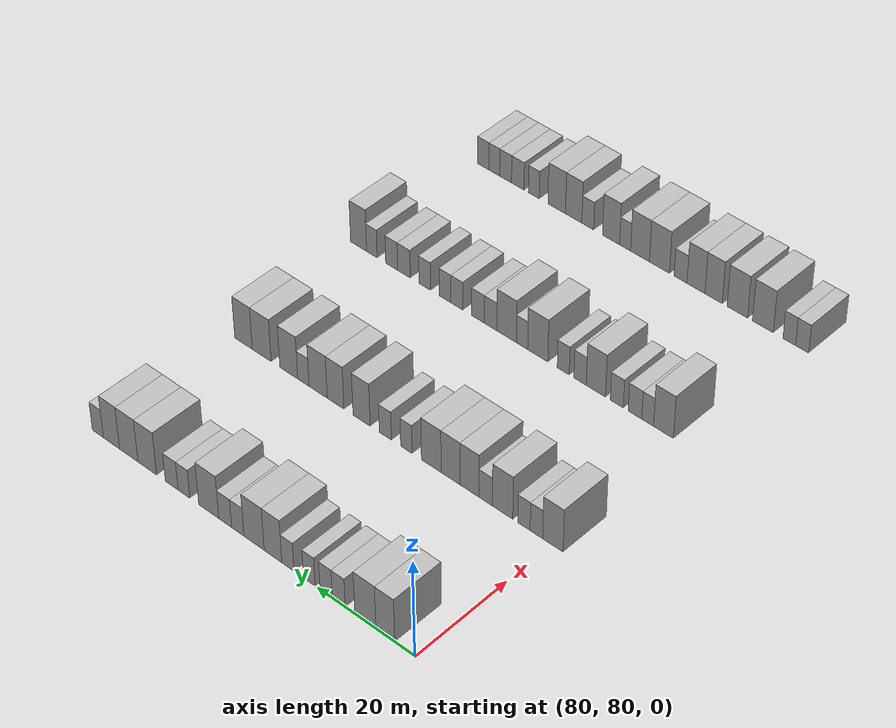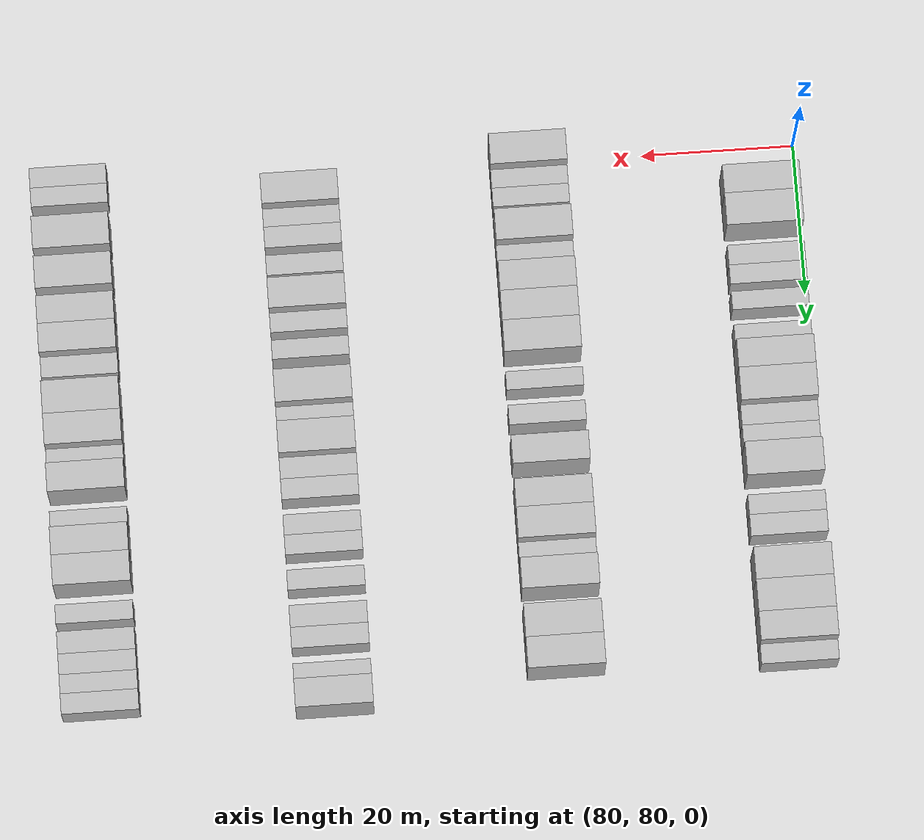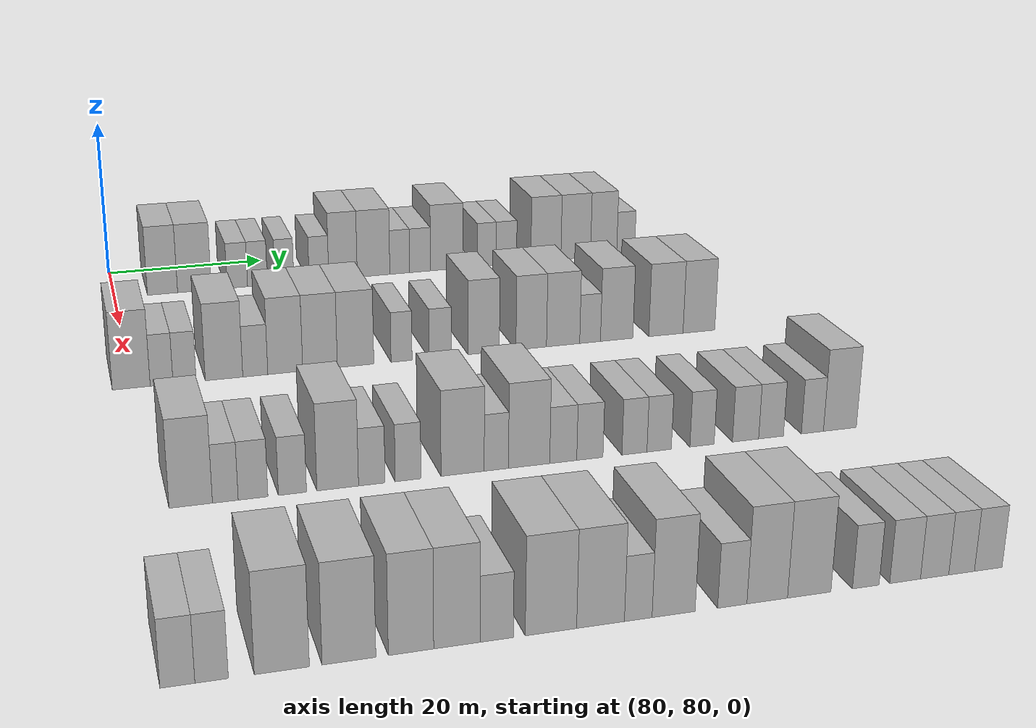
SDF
<sdf version="1.6">
 <world name="default">
  <model name="building_576">
   <static>1</static>
   <pose>85.0000 86.0108 0 0.000000 0.000000 0.000000</pose>
   <link name="link">
    <pose>0 0 4.50 0 0 0</pose>
    <collision name="collision"><geometry><box><size>10.0000 3.7856 9.0000</size></box></geometry></collision>
    <visual name="visual">
     <cast_shadows>0</cast_shadows>
     <geometry><box><size>10.0000 3.7856 9.0000</size></box></geometry>
     <material>
      <script>
       <uri>model://HANNAS_wall/materials/scripts</uri>
       <uri>model://HANNAS_wall/materials/textures</uri>
       <name>vrc/HANNAS_wall</name>
      </script>
     </material>
    </visual>
   </link>
  </model>
  <model name="building_577">
   <static>1</static>
   <pose>85.0000 90.0447 0 0.000000 0.000000 0.000000</pose>
   <link name="link">
    <pose>0 0 4.50 0 0 0</pose>
    <collision name="collision"><geometry><box><size>10.0000 4.2822 9.0000</size></box></geometry></collision>
    <visual name="visual">
     <cast_shadows>0</cast_shadows>
     <geometry><box><size>10.0000 4.2822 9.0000</size></box></geometry>
     <material>
      <script>
       <uri>model://HANNAS_wall/materials/scripts</uri>
       <uri>model://HANNAS_wall/materials/textures</uri>
       <name>vrc/HANNAS_wall</name>
      </script>
     </material>
    </visual>
   </link>
  </model>
  <model name="building_578">
   <static>1</static>
   <pose>85.0000 95.5018 0 0.000000 0.000000 0.000000</pose>
   <link name="link">
    <pose>0 0 3.00 0 0 0</pose>
    <collision name="collision"><geometry><box><size>10.0000 2.6319 6.0000</size></box></geometry></collision>
    <visual name="visual">
     <cast_shadows>0</cast_shadows>
     <geometry><box><size>10.0000 2.6319 6.0000</size></box></geometry>
     <material>
      <script>
       <uri>model://HANNAS_wall/materials/scripts</uri>
       <uri>model://HANNAS_wall/materials/textures</uri>
       <name>vrc/HANNAS_wall</name>
      </script>
     </material>
    </visual>
   </link>
  </model>
  <model name="building_579">
   <static>1</static>
   <pose>85.0000 98.0971 0 0.000000 0.000000 0.000000</pose>
   <link name="link">
    <pose>0 0 3.00 0 0 0</pose>
    <collision name="collision"><geometry><box><size>10.0000 2.5587 6.0000</size></box></geometry></collision>
    <visual name="visual">
     <cast_shadows>0</cast_shadows>
     <geometry><box><size>10.0000 2.5587 6.0000</size></box></geometry>
     <material>
      <script>
       <uri>model://HANNAS_wall/materials/scripts</uri>
       <uri>model://HANNAS_wall/materials/textures</uri>
       <name>vrc/HANNAS_wall</name>
      </script>
     </material>
    </visual>
   </link>
  </model>
  <model name="building_580">
   <static>1</static>
   <pose>85.0000 101.5977 0 0.000000 0.000000 0.000000</pose>
   <link name="link">
    <pose>0 0 3.00 0 0 0</pose>
    <collision name="collision"><geometry><box><size>10.0000 2.4425 6.0000</size></box></geometry></collision>
    <visual name="visual">
     <cast_shadows>0</cast_shadows>
     <geometry><box><size>10.0000 2.4425 6.0000</size></box></geometry>
     <material>
      <script>
       <uri>model://HANNAS_wall/materials/scripts</uri>
       <uri>model://HANNAS_wall/materials/textures</uri>
       <name>vrc/HANNAS_wall</name>
      </script>
     </material>
    </visual>
   </link>
  </model>
  <model name="building_581">
   <static>1</static>
   <pose>85.0000 106.1033 0 0.000000 0.000000 0.000000</pose>
   <link name="link">
    <pose>0 0 3.00 0 0 0</pose>
    <collision name="collision"><geometry><box><size>10.0000 2.5688 6.0000</size></box></geometry></collision>
    <visual name="visual">
     <cast_shadows>0</cast_shadows>
     <geometry><box><size>10.0000 2.5688 6.0000</size></box></geometry>
     <material>
      <script>
       <uri>model://HANNAS_wall/materials/scripts</uri>
       <uri>model://HANNAS_wall/materials/textures</uri>
       <name>vrc/HANNAS_wall</name>
      </script>
     </material>
    </visual>
   </link>
  </model>
  <model name="building_582">
   <static>1</static>
   <pose>85.0000 109.2730 0 0.000000 0.000000 0.000000</pose>
   <link name="link">
    <pose>0 0 4.50 0 0 0</pose>
    <collision name="collision"><geometry><box><size>10.0000 3.7707 9.0000</size></box></geometry></collision>
    <visual name="visual">
     <cast_shadows>0</cast_shadows>
     <geometry><box><size>10.0000 3.7707 9.0000</size></box></geometry>
     <material>
      <script>
       <uri>model://HANNAS_wall/materials/scripts</uri>
       <uri>model://HANNAS_wall/materials/textures</uri>
       <name>vrc/HANNAS_wall</name>
      </script>
     </material>
    </visual>
   </link>
  </model>
  <model name="building_583">
   <static>1</static>
   <pose>85.0000 113.3333 0 0.000000 0.000000 0.000000</pose>
   <link name="link">
    <pose>0 0 4.50 0 0 0</pose>
    <collision name="collision"><geometry><box><size>10.0000 4.3499 9.0000</size></box></geometry></collision>
    <visual name="visual">
     <cast_shadows>0</cast_shadows>
     <geometry><box><size>10.0000 4.3499 9.0000</size></box></geometry>
     <material>
      <script>
       <uri>model://HANNAS_wall/materials/scripts</uri>
       <uri>model://HANNAS_wall/materials/textures</uri>
       <name>vrc/HANNAS_wall</name>
      </script>
     </material>
    </visual>
   </link>
  </model>
  <model name="building_584">
   <static>1</static>
   <pose>85.0000 116.8461 0 0.000000 0.000000 0.000000</pose>
   <link name="link">
    <pose>0 0 3.00 0 0 0</pose>
    <collision name="collision"><geometry><box><size>10.0000 2.6758 6.0000</size></box></geometry></collision>
    <visual name="visual">
     <cast_shadows>0</cast_shadows>
     <geometry><box><size>10.0000 2.6758 6.0000</size></box></geometry>
     <material>
      <script>
       <uri>model://HANNAS_wall/materials/scripts</uri>
       <uri>model://HANNAS_wall/materials/textures</uri>
       <name>vrc/HANNAS_wall</name>
      </script>
     </material>
    </visual>
   </link>
  </model>
  <model name="building_585">
   <static>1</static>
   <pose>85.0000 119.5896 0 0.000000 0.000000 0.000000</pose>
   <link name="link">
    <pose>0 0 3.00 0 0 0</pose>
    <collision name="collision"><geometry><box><size>10.0000 2.8112 6.0000</size></box></geometry></collision>
    <visual name="visual">
     <cast_shadows>0</cast_shadows>
     <geometry><box><size>10.0000 2.8112 6.0000</size></box></geometry>
     <material>
      <script>
       <uri>model://HANNAS_wall/materials/scripts</uri>
       <uri>model://HANNAS_wall/materials/textures</uri>
       <name>vrc/HANNAS_wall</name>
      </script>
     </material>
    </visual>
   </link>
  </model>
  <model name="building_586">
   <static>1</static>
   <pose>85.0000 123.2053 0 0.000000 0.000000 0.000000</pose>
   <link name="link">
    <pose>0 0 4.50 0 0 0</pose>
    <collision name="collision"><geometry><box><size>10.0000 4.4201 9.0000</size></box></geometry></collision>
    <visual name="visual">
     <cast_shadows>0</cast_shadows>
     <geometry><box><size>10.0000 4.4201 9.0000</size></box></geometry>
     <material>
      <script>
       <uri>model://HANNAS_wall/materials/scripts</uri>
       <uri>model://HANNAS_wall/materials/textures</uri>
       <name>vrc/HANNAS_wall</name>
      </script>
     </material>
    </visual>
   </link>
  </model>
  <model name="building_587">
   <static>1</static>
   <pose>85.0000 128.7091 0 0.000000 0.000000 0.000000</pose>
   <link name="link">
    <pose>0 0 3.00 0 0 0</pose>
    <collision name="collision"><geometry><box><size>10.0000 2.5875 6.0000</size></box></geometry></collision>
    <visual name="visual">
     <cast_shadows>0</cast_shadows>
     <geometry><box><size>10.0000 2.5875 6.0000</size></box></geometry>
     <material>
      <script>
       <uri>model://HANNAS_wall/materials/scripts</uri>
       <uri>model://HANNAS_wall/materials/textures</uri>
       <name>vrc/HANNAS_wall</name>
      </script>
     </material>
    </visual>
   </link>
  </model>
  <model name="building_588">
   <static>1</static>
   <pose>85.0000 131.4277 0 0.000000 0.000000 0.000000</pose>
   <link name="link">
    <pose>0 0 3.00 0 0 0</pose>
    <collision name="collision"><geometry><box><size>10.0000 2.8496 6.0000</size></box></geometry></collision>
    <visual name="visual">
     <cast_shadows>0</cast_shadows>
     <geometry><box><size>10.0000 2.8496 6.0000</size></box></geometry>
     <material>
      <script>
       <uri>model://HANNAS_wall/materials/scripts</uri>
       <uri>model://HANNAS_wall/materials/textures</uri>
       <name>vrc/HANNAS_wall</name>
      </script>
     </material>
    </visual>
   </link>
  </model>
  <model name="building_589">
   <static>1</static>
   <pose>85.0000 136.9643 0 0.000000 0.000000 0.000000</pose>
   <link name="link">
    <pose>0 0 4.50 0 0 0</pose>
    <collision name="collision"><geometry><box><size>10.0000 4.2237 9.0000</size></box></geometry></collision>
    <visual name="visual">
     <cast_shadows>0</cast_shadows>
     <geometry><box><size>10.0000 4.2237 9.0000</size></box></geometry>
     <material>
      <script>
       <uri>model://HANNAS_wall/materials/scripts</uri>
       <uri>model://HANNAS_wall/materials/textures</uri>
       <name>vrc/HANNAS_wall</name>
      </script>
     </material>
    </visual>
   </link>
  </model>
  <model name="building_590">
   <static>1</static>
   <pose>85.0000 141.1807 0 0.000000 0.000000 0.000000</pose>
   <link name="link">
    <pose>0 0 4.50 0 0 0</pose>
    <collision name="collision"><geometry><box><size>10.0000 4.2090 9.0000</size></box></geometry></collision>
    <visual name="visual">
     <cast_shadows>0</cast_shadows>
     <geometry><box><size>10.0000 4.2090 9.0000</size></box></geometry>
     <material>
      <script>
       <uri>model://HANNAS_wall/materials/scripts</uri>
       <uri>model://HANNAS_wall/materials/textures</uri>
       <name>vrc/HANNAS_wall</name>
      </script>
     </material>
    </visual>
   </link>
  </model>
  <model name="building_591">
   <static>1</static>
   <pose>85.0000 145.1577 0 0.000000 0.000000 0.000000</pose>
   <link name="link">
    <pose>0 0 4.50 0 0 0</pose>
    <collision name="collision"><geometry><box><size>10.0000 3.7450 9.0000</size></box></geometry></collision>
    <visual name="visual">
     <cast_shadows>0</cast_shadows>
     <geometry><box><size>10.0000 3.7450 9.0000</size></box></geometry>
     <material>
      <script>
       <uri>model://HANNAS_wall/materials/scripts</uri>
       <uri>model://HANNAS_wall/materials/textures</uri>
       <name>vrc/HANNAS_wall</name>
      </script>
     </material>
    </visual>
   </link>
  </model>
  <model name="building_592">
   <static>1</static>
   <pose>85.0000 148.3240 0 0.000000 0.000000 0.000000</pose>
   <link name="link">
    <pose>0 0 3.00 0 0 0</pose>
    <collision name="collision"><geometry><box><size>10.0000 2.5876 6.0000</size></box></geometry></collision>
    <visual name="visual">
     <cast_shadows>0</cast_shadows>
     <geometry><box><size>10.0000 2.5876 6.0000</size></box></geometry>
     <material>
      <script>
       <uri>model://HANNAS_wall/materials/scripts</uri>
       <uri>model://HANNAS_wall/materials/textures</uri>
       <name>vrc/HANNAS_wall</name>
      </script>
     </material>
    </visual>
   </link>
  </model>
  <model name="building_815">
   <static>1</static>
   <pose>115.0000 79.8624 0 0.000000 0.000000 0.000000</pose>
   <link name="link">
    <pose>0 0 4.50 0 0 0</pose>
    <collision name="collision"><geometry><box><size>10.0000 4.0983 9.0000</size></box></geometry></collision>
    <visual name="visual">
     <cast_shadows>0</cast_shadows>
     <geometry><box><size>10.0000 4.0983 9.0000</size></box></geometry>
     <material>
      <script>
       <uri>model://HANNAS_wall/materials/scripts</uri>
       <uri>model://HANNAS_wall/materials/textures</uri>
       <name>vrc/HANNAS_wall</name>
      </script>
     </material>
    </visual>
   </link>
  </model>
  <model name="building_816">
   <static>1</static>
   <pose>115.0000 83.1542 0 0.000000 0.000000 0.000000</pose>
   <link name="link">
    <pose>0 0 3.00 0 0 0</pose>
    <collision name="collision"><geometry><box><size>10.0000 2.4854 6.0000</size></box></geometry></collision>
    <visual name="visual">
     <cast_shadows>0</cast_shadows>
     <geometry><box><size>10.0000 2.4854 6.0000</size></box></geometry>
     <material>
      <script>
       <uri>model://HANNAS_wall/materials/scripts</uri>
       <uri>model://HANNAS_wall/materials/textures</uri>
       <name>vrc/HANNAS_wall</name>
      </script>
     </material>
    </visual>
   </link>
  </model>
  <model name="building_817">
   <static>1</static>
   <pose>115.0000 85.6615 0 0.000000 0.000000 0.000000</pose>
   <link name="link">
    <pose>0 0 3.00 0 0 0</pose>
    <collision name="collision"><geometry><box><size>10.0000 2.5293 6.0000</size></box></geometry></collision>
    <visual name="visual">
     <cast_shadows>0</cast_shadows>
     <geometry><box><size>10.0000 2.5293 6.0000</size></box></geometry>
     <material>
      <script>
       <uri>model://HANNAS_wall/materials/scripts</uri>
       <uri>model://HANNAS_wall/materials/textures</uri>
       <name>vrc/HANNAS_wall</name>
      </script>
     </material>
    </visual>
   </link>
  </model>
  <model name="building_818">
   <static>1</static>
   <pose>115.0000 90.0060 0 0.000000 0.000000 0.000000</pose>
   <link name="link">
    <pose>0 0 4.50 0 0 0</pose>
    <collision name="collision"><geometry><box><size>10.0000 4.1596 9.0000</size></box></geometry></collision>
    <visual name="visual">
     <cast_shadows>0</cast_shadows>
     <geometry><box><size>10.0000 4.1596 9.0000</size></box></geometry>
     <material>
      <script>
       <uri>model://HANNAS_wall/materials/scripts</uri>
       <uri>model://HANNAS_wall/materials/textures</uri>
       <name>vrc/HANNAS_wall</name>
      </script>
     </material>
    </visual>
   </link>
  </model>
  <model name="building_819">
   <static>1</static>
   <pose>115.0000 93.4851 0 0.000000 0.000000 0.000000</pose>
   <link name="link">
    <pose>0 0 3.00 0 0 0</pose>
    <collision name="collision"><geometry><box><size>10.0000 2.7986 6.0000</size></box></geometry></collision>
    <visual name="visual">
     <cast_shadows>0</cast_shadows>
     <geometry><box><size>10.0000 2.7986 6.0000</size></box></geometry>
     <material>
      <script>
       <uri>model://HANNAS_wall/materials/scripts</uri>
       <uri>model://HANNAS_wall/materials/textures</uri>
       <name>vrc/HANNAS_wall</name>
      </script>
     </material>
    </visual>
   </link>
  </model>
  <model name="building_820">
   <static>1</static>
   <pose>115.0000 96.8560 0 0.000000 0.000000 0.000000</pose>
   <link name="link">
    <pose>0 0 4.50 0 0 0</pose>
    <collision name="collision"><geometry><box><size>10.0000 3.9434 9.0000</size></box></geometry></collision>
    <visual name="visual">
     <cast_shadows>0</cast_shadows>
     <geometry><box><size>10.0000 3.9434 9.0000</size></box></geometry>
     <material>
      <script>
       <uri>model://HANNAS_wall/materials/scripts</uri>
       <uri>model://HANNAS_wall/materials/textures</uri>
       <name>vrc/HANNAS_wall</name>
      </script>
     </material>
    </visual>
   </link>
  </model>
  <model name="building_821">
   <static>1</static>
   <pose>115.0000 100.8000 0 0.000000 0.000000 0.000000</pose>
   <link name="link">
    <pose>0 0 4.50 0 0 0</pose>
    <collision name="collision"><geometry><box><size>10.0000 3.9444 9.0000</size></box></geometry></collision>
    <visual name="visual">
     <cast_shadows>0</cast_shadows>
     <geometry><box><size>10.0000 3.9444 9.0000</size></box></geometry>
     <material>
      <script>
       <uri>model://HANNAS_wall/materials/scripts</uri>
       <uri>model://HANNAS_wall/materials/textures</uri>
       <name>vrc/HANNAS_wall</name>
      </script>
     </material>
    </visual>
   </link>
  </model>
  <model name="building_822">
   <static>1</static>
   <pose>115.0000 104.8703 0 0.000000 0.000000 0.000000</pose>
   <link name="link">
    <pose>0 0 4.50 0 0 0</pose>
    <collision name="collision"><geometry><box><size>10.0000 4.1963 9.0000</size></box></geometry></collision>
    <visual name="visual">
     <cast_shadows>0</cast_shadows>
     <geometry><box><size>10.0000 4.1963 9.0000</size></box></geometry>
     <material>
      <script>
       <uri>model://HANNAS_wall/materials/scripts</uri>
       <uri>model://HANNAS_wall/materials/textures</uri>
       <name>vrc/HANNAS_wall</name>
      </script>
     </material>
    </visual>
   </link>
  </model>
  <model name="building_823">
   <static>1</static>
   <pose>115.0000 110.1940 0 0.000000 0.000000 0.000000</pose>
   <link name="link">
    <pose>0 0 3.00 0 0 0</pose>
    <collision name="collision"><geometry><box><size>10.0000 2.4511 6.0000</size></box></geometry></collision>
    <visual name="visual">
     <cast_shadows>0</cast_shadows>
     <geometry><box><size>10.0000 2.4511 6.0000</size></box></geometry>
     <material>
      <script>
       <uri>model://HANNAS_wall/materials/scripts</uri>
       <uri>model://HANNAS_wall/materials/textures</uri>
       <name>vrc/HANNAS_wall</name>
      </script>
     </material>
    </visual>
   </link>
  </model>
  <model name="building_824">
   <static>1</static>
   <pose>115.0000 114.7313 0 0.000000 0.000000 0.000000</pose>
   <link name="link">
    <pose>0 0 3.00 0 0 0</pose>
    <collision name="collision"><geometry><box><size>10.0000 2.6236 6.0000</size></box></geometry></collision>
    <visual name="visual">
     <cast_shadows>0</cast_shadows>
     <geometry><box><size>10.0000 2.6236 6.0000</size></box></geometry>
     <material>
      <script>
       <uri>model://HANNAS_wall/materials/scripts</uri>
       <uri>model://HANNAS_wall/materials/textures</uri>
       <name>vrc/HANNAS_wall</name>
      </script>
     </material>
    </visual>
   </link>
  </model>
  <model name="building_825">
   <static>1</static>
   <pose>115.0000 119.9146 0 0.000000 0.000000 0.000000</pose>
   <link name="link">
    <pose>0 0 4.50 0 0 0</pose>
    <collision name="collision"><geometry><box><size>10.0000 3.7430 9.0000</size></box></geometry></collision>
    <visual name="visual">
     <cast_shadows>0</cast_shadows>
     <geometry><box><size>10.0000 3.7430 9.0000</size></box></geometry>
     <material>
      <script>
       <uri>model://HANNAS_wall/materials/scripts</uri>
       <uri>model://HANNAS_wall/materials/textures</uri>
       <name>vrc/HANNAS_wall</name>
      </script>
     </material>
    </visual>
   </link>
  </model>
  <model name="building_826">
   <static>1</static>
   <pose>115.0000 125.6430 0 0.000000 0.000000 0.000000</pose>
   <link name="link">
    <pose>0 0 4.50 0 0 0</pose>
    <collision name="collision"><geometry><box><size>10.0000 3.7137 9.0000</size></box></geometry></collision>
    <visual name="visual">
     <cast_shadows>0</cast_shadows>
     <geometry><box><size>10.0000 3.7137 9.0000</size></box></geometry>
     <material>
      <script>
       <uri>model://HANNAS_wall/materials/scripts</uri>
       <uri>model://HANNAS_wall/materials/textures</uri>
       <name>vrc/HANNAS_wall</name>
      </script>
     </material>
    </visual>
   </link>
  </model>
  <model name="building_827">
   <static>1</static>
   <pose>115.0000 129.5367 0 0.000000 0.000000 0.000000</pose>
   <link name="link">
    <pose>0 0 4.50 0 0 0</pose>
    <collision name="collision"><geometry><box><size>10.0000 4.0737 9.0000</size></box></geometry></collision>
    <visual name="visual">
     <cast_shadows>0</cast_shadows>
     <geometry><box><size>10.0000 4.0737 9.0000</size></box></geometry>
     <material>
      <script>
       <uri>model://HANNAS_wall/materials/scripts</uri>
       <uri>model://HANNAS_wall/materials/textures</uri>
       <name>vrc/HANNAS_wall</name>
      </script>
     </material>
    </visual>
   </link>
  </model>
  <model name="building_828">
   <static>1</static>
   <pose>115.0000 132.8597 0 0.000000 0.000000 0.000000</pose>
   <link name="link">
    <pose>0 0 3.00 0 0 0</pose>
    <collision name="collision"><geometry><box><size>10.0000 2.5724 6.0000</size></box></geometry></collision>
    <visual name="visual">
     <cast_shadows>0</cast_shadows>
     <geometry><box><size>10.0000 2.5724 6.0000</size></box></geometry>
     <material>
      <script>
       <uri>model://HANNAS_wall/materials/scripts</uri>
       <uri>model://HANNAS_wall/materials/textures</uri>
       <name>vrc/HANNAS_wall</name>
      </script>
     </material>
    </visual>
   </link>
  </model>
  <model name="building_829">
   <static>1</static>
   <pose>115.0000 136.1675 0 0.000000 0.000000 0.000000</pose>
   <link name="link">
    <pose>0 0 4.50 0 0 0</pose>
    <collision name="collision"><geometry><box><size>10.0000 4.0432 9.0000</size></box></geometry></collision>
    <visual name="visual">
     <cast_shadows>0</cast_shadows>
     <geometry><box><size>10.0000 4.0432 9.0000</size></box></geometry>
     <material>
      <script>
       <uri>model://HANNAS_wall/materials/scripts</uri>
       <uri>model://HANNAS_wall/materials/textures</uri>
       <name>vrc/HANNAS_wall</name>
      </script>
     </material>
    </visual>
   </link>
  </model>
  <model name="building_830">
   <static>1</static>
   <pose>115.0000 142.3565 0 0.000000 0.000000 0.000000</pose>
   <link name="link">
    <pose>0 0 4.50 0 0 0</pose>
    <collision name="collision"><geometry><box><size>10.0000 4.3348 9.0000</size></box></geometry></collision>
    <visual name="visual">
     <cast_shadows>0</cast_shadows>
     <geometry><box><size>10.0000 4.3348 9.0000</size></box></geometry>
     <material>
      <script>
       <uri>model://HANNAS_wall/materials/scripts</uri>
       <uri>model://HANNAS_wall/materials/textures</uri>
       <name>vrc/HANNAS_wall</name>
      </script>
     </material>
    </visual>
   </link>
  </model>
  <model name="building_831">
   <static>1</static>
   <pose>115.0000 146.5554 0 0.000000 0.000000 0.000000</pose>
   <link name="link">
    <pose>0 0 4.50 0 0 0</pose>
    <collision name="collision"><geometry><box><size>10.0000 4.0630 9.0000</size></box></geometry></collision>
    <visual name="visual">
     <cast_shadows>0</cast_shadows>
     <geometry><box><size>10.0000 4.0630 9.0000</size></box></geometry>
     <material>
      <script>
       <uri>model://HANNAS_wall/materials/scripts</uri>
       <uri>model://HANNAS_wall/materials/textures</uri>
       <name>vrc/HANNAS_wall</name>
      </script>
     </material>
    </visual>
   </link>
  </model>
  <model name="building_1040">
   <static>1</static>
   <pose>145.0000 83.0992 0 0.000000 0.000000 0.000000</pose>
   <link name="link">
    <pose>0 0 4.50 0 0 0</pose>
    <collision name="collision"><geometry><box><size>10.0000 4.0368 9.0000</size></box></geometry></collision>
    <visual name="visual">
     <cast_shadows>0</cast_shadows>
     <geometry><box><size>10.0000 4.0368 9.0000</size></box></geometry>
     <material>
      <script>
       <uri>model://HANNAS_wall/materials/scripts</uri>
       <uri>model://HANNAS_wall/materials/textures</uri>
       <name>vrc/HANNAS_wall</name>
      </script>
     </material>
    </visual>
   </link>
  </model>
  <model name="building_1041">
   <static>1</static>
   <pose>145.0000 86.3255 0 0.000000 0.000000 0.000000</pose>
   <link name="link">
    <pose>0 0 3.00 0 0 0</pose>
    <collision name="collision"><geometry><box><size>10.0000 2.4156 6.0000</size></box></geometry></collision>
    <visual name="visual">
     <cast_shadows>0</cast_shadows>
     <geometry><box><size>10.0000 2.4156 6.0000</size></box></geometry>
     <material>
      <script>
       <uri>model://HANNAS_wall/materials/scripts</uri>
       <uri>model://HANNAS_wall/materials/textures</uri>
       <name>vrc/HANNAS_wall</name>
      </script>
     </material>
    </visual>
   </link>
  </model>
  <model name="building_1042">
   <static>1</static>
   <pose>145.0000 88.9383 0 0.000000 0.000000 0.000000</pose>
   <link name="link">
    <pose>0 0 3.00 0 0 0</pose>
    <collision name="collision"><geometry><box><size>10.0000 2.8100 6.0000</size></box></geometry></collision>
    <visual name="visual">
     <cast_shadows>0</cast_shadows>
     <geometry><box><size>10.0000 2.8100 6.0000</size></box></geometry>
     <material>
      <script>
       <uri>model://HANNAS_wall/materials/scripts</uri>
       <uri>model://HANNAS_wall/materials/textures</uri>
       <name>vrc/HANNAS_wall</name>
      </script>
     </material>
    </visual>
   </link>
  </model>
  <model name="building_1043">
   <static>1</static>
   <pose>145.0000 92.6889 0 0.000000 0.000000 0.000000</pose>
   <link name="link">
    <pose>0 0 3.00 0 0 0</pose>
    <collision name="collision"><geometry><box><size>10.0000 2.6913 6.0000</size></box></geometry></collision>
    <visual name="visual">
     <cast_shadows>0</cast_shadows>
     <geometry><box><size>10.0000 2.6913 6.0000</size></box></geometry>
     <material>
      <script>
       <uri>model://HANNAS_wall/materials/scripts</uri>
       <uri>model://HANNAS_wall/materials/textures</uri>
       <name>vrc/HANNAS_wall</name>
      </script>
     </material>
    </visual>
   </link>
  </model>
  <model name="building_1044">
   <static>1</static>
   <pose>145.0000 97.0536 0 0.000000 0.000000 0.000000</pose>
   <link name="link">
    <pose>0 0 4.50 0 0 0</pose>
    <collision name="collision"><geometry><box><size>10.0000 4.0380 9.0000</size></box></geometry></collision>
    <visual name="visual">
     <cast_shadows>0</cast_shadows>
     <geometry><box><size>10.0000 4.0380 9.0000</size></box></geometry>
     <material>
      <script>
       <uri>model://HANNAS_wall/materials/scripts</uri>
       <uri>model://HANNAS_wall/materials/textures</uri>
       <name>vrc/HANNAS_wall</name>
      </script>
     </material>
    </visual>
   </link>
  </model>
  <model name="building_1045">
   <static>1</static>
   <pose>145.0000 100.3746 0 0.000000 0.000000 0.000000</pose>
   <link name="link">
    <pose>0 0 3.00 0 0 0</pose>
    <collision name="collision"><geometry><box><size>10.0000 2.6039 6.0000</size></box></geometry></collision>
    <visual name="visual">
     <cast_shadows>0</cast_shadows>
     <geometry><box><size>10.0000 2.6039 6.0000</size></box></geometry>
     <material>
      <script>
       <uri>model://HANNAS_wall/materials/scripts</uri>
       <uri>model://HANNAS_wall/materials/textures</uri>
       <name>vrc/HANNAS_wall</name>
      </script>
     </material>
    </visual>
   </link>
  </model>
  <model name="building_1046">
   <static>1</static>
   <pose>145.0000 103.9510 0 0.000000 0.000000 0.000000</pose>
   <link name="link">
    <pose>0 0 3.00 0 0 0</pose>
    <collision name="collision"><geometry><box><size>10.0000 2.5490 6.0000</size></box></geometry></collision>
    <visual name="visual">
     <cast_shadows>0</cast_shadows>
     <geometry><box><size>10.0000 2.5490 6.0000</size></box></geometry>
     <material>
      <script>
       <uri>model://HANNAS_wall/materials/scripts</uri>
       <uri>model://HANNAS_wall/materials/textures</uri>
       <name>vrc/HANNAS_wall</name>
      </script>
     </material>
    </visual>
   </link>
  </model>
  <model name="building_1047">
   <static>1</static>
   <pose>145.0000 109.3997 0 0.000000 0.000000 0.000000</pose>
   <link name="link">
    <pose>0 0 4.50 0 0 0</pose>
    <collision name="collision"><geometry><box><size>10.0000 4.3484 9.0000</size></box></geometry></collision>
    <visual name="visual">
     <cast_shadows>0</cast_shadows>
     <geometry><box><size>10.0000 4.3484 9.0000</size></box></geometry>
     <material>
      <script>
       <uri>model://HANNAS_wall/materials/scripts</uri>
       <uri>model://HANNAS_wall/materials/textures</uri>
       <name>vrc/HANNAS_wall</name>
      </script>
     </material>
    </visual>
   </link>
  </model>
  <model name="building_1048">
   <static>1</static>
   <pose>145.0000 112.8094 0 0.000000 0.000000 0.000000</pose>
   <link name="link">
    <pose>0 0 3.00 0 0 0</pose>
    <collision name="collision"><geometry><box><size>10.0000 2.4710 6.0000</size></box></geometry></collision>
    <visual name="visual">
     <cast_shadows>0</cast_shadows>
     <geometry><box><size>10.0000 2.4710 6.0000</size></box></geometry>
     <material>
      <script>
       <uri>model://HANNAS_wall/materials/scripts</uri>
       <uri>model://HANNAS_wall/materials/textures</uri>
       <name>vrc/HANNAS_wall</name>
      </script>
     </material>
    </visual>
   </link>
  </model>
  <model name="building_1049">
   <static>1</static>
   <pose>145.0000 116.1671 0 0.000000 0.000000 0.000000</pose>
   <link name="link">
    <pose>0 0 4.50 0 0 0</pose>
    <collision name="collision"><geometry><box><size>10.0000 4.2445 9.0000</size></box></geometry></collision>
    <visual name="visual">
     <cast_shadows>0</cast_shadows>
     <geometry><box><size>10.0000 4.2445 9.0000</size></box></geometry>
     <material>
      <script>
       <uri>model://HANNAS_wall/materials/scripts</uri>
       <uri>model://HANNAS_wall/materials/textures</uri>
       <name>vrc/HANNAS_wall</name>
      </script>
     </material>
    </visual>
   </link>
  </model>
  <model name="building_1050">
   <static>1</static>
   <pose>145.0000 119.6915 0 0.000000 0.000000 0.000000</pose>
   <link name="link">
    <pose>0 0 3.00 0 0 0</pose>
    <collision name="collision"><geometry><box><size>10.0000 2.8042 6.0000</size></box></geometry></collision>
    <visual name="visual">
     <cast_shadows>0</cast_shadows>
     <geometry><box><size>10.0000 2.8042 6.0000</size></box></geometry>
     <material>
      <script>
       <uri>model://HANNAS_wall/materials/scripts</uri>
       <uri>model://HANNAS_wall/materials/textures</uri>
       <name>vrc/HANNAS_wall</name>
      </script>
     </material>
    </visual>
   </link>
  </model>
  <model name="building_1051">
   <static>1</static>
   <pose>145.0000 122.4677 0 0.000000 0.000000 0.000000</pose>
   <link name="link">
    <pose>0 0 3.00 0 0 0</pose>
    <collision name="collision"><geometry><box><size>10.0000 2.7483 6.0000</size></box></geometry></collision>
    <visual name="visual">
     <cast_shadows>0</cast_shadows>
     <geometry><box><size>10.0000 2.7483 6.0000</size></box></geometry>
     <material>
      <script>
       <uri>model://HANNAS_wall/materials/scripts</uri>
       <uri>model://HANNAS_wall/materials/textures</uri>
       <name>vrc/HANNAS_wall</name>
      </script>
     </material>
    </visual>
   </link>
  </model>
  <model name="building_1052">
   <static>1</static>
   <pose>145.0000 127.1700 0 0.000000 0.000000 0.000000</pose>
   <link name="link">
    <pose>0 0 3.00 0 0 0</pose>
    <collision name="collision"><geometry><box><size>10.0000 2.6563 6.0000</size></box></geometry></collision>
    <visual name="visual">
     <cast_shadows>0</cast_shadows>
     <geometry><box><size>10.0000 2.6563 6.0000</size></box></geometry>
     <material>
      <script>
       <uri>model://HANNAS_wall/materials/scripts</uri>
       <uri>model://HANNAS_wall/materials/textures</uri>
       <name>vrc/HANNAS_wall</name>
      </script>
     </material>
    </visual>
   </link>
  </model>
  <model name="building_1053">
   <static>1</static>
   <pose>145.0000 129.8048 0 0.000000 0.000000 0.000000</pose>
   <link name="link">
    <pose>0 0 3.00 0 0 0</pose>
    <collision name="collision"><geometry><box><size>10.0000 2.6132 6.0000</size></box></geometry></collision>
    <visual name="visual">
     <cast_shadows>0</cast_shadows>
     <geometry><box><size>10.0000 2.6132 6.0000</size></box></geometry>
     <material>
      <script>
       <uri>model://HANNAS_wall/materials/scripts</uri>
       <uri>model://HANNAS_wall/materials/textures</uri>
       <name>vrc/HANNAS_wall</name>
      </script>
     </material>
    </visual>
   </link>
  </model>
  <model name="building_1054">
   <static>1</static>
   <pose>145.0000 134.4268 0 0.000000 0.000000 0.000000</pose>
   <link name="link">
    <pose>0 0 3.00 0 0 0</pose>
    <collision name="collision"><geometry><box><size>10.0000 2.6308 6.0000</size></box></geometry></collision>
    <visual name="visual">
     <cast_shadows>0</cast_shadows>
     <geometry><box><size>10.0000 2.6308 6.0000</size></box></geometry>
     <material>
      <script>
       <uri>model://HANNAS_wall/materials/scripts</uri>
       <uri>model://HANNAS_wall/materials/textures</uri>
       <name>vrc/HANNAS_wall</name>
      </script>
     </material>
    </visual>
   </link>
  </model>
  <model name="building_1055">
   <static>1</static>
   <pose>145.0000 139.1830 0 0.000000 0.000000 0.000000</pose>
   <link name="link">
    <pose>0 0 3.00 0 0 0</pose>
    <collision name="collision"><geometry><box><size>10.0000 2.8816 6.0000</size></box></geometry></collision>
    <visual name="visual">
     <cast_shadows>0</cast_shadows>
     <geometry><box><size>10.0000 2.8816 6.0000</size></box></geometry>
     <material>
      <script>
       <uri>model://HANNAS_wall/materials/scripts</uri>
       <uri>model://HANNAS_wall/materials/textures</uri>
       <name>vrc/HANNAS_wall</name>
      </script>
     </material>
    </visual>
   </link>
  </model>
  <model name="building_1056">
   <static>1</static>
   <pose>145.0000 141.9992 0 0.000000 0.000000 0.000000</pose>
   <link name="link">
    <pose>0 0 3.00 0 0 0</pose>
    <collision name="collision"><geometry><box><size>10.0000 2.7510 6.0000</size></box></geometry></collision>
    <visual name="visual">
     <cast_shadows>0</cast_shadows>
     <geometry><box><size>10.0000 2.7510 6.0000</size></box></geometry>
     <material>
      <script>
       <uri>model://HANNAS_wall/materials/scripts</uri>
       <uri>model://HANNAS_wall/materials/textures</uri>
       <name>vrc/HANNAS_wall</name>
      </script>
     </material>
    </visual>
   </link>
  </model>
  <model name="building_1057">
   <static>1</static>
   <pose>145.0000 146.6162 0 0.000000 0.000000 0.000000</pose>
   <link name="link">
    <pose>0 0 3.00 0 0 0</pose>
    <collision name="collision"><geometry><box><size>10.0000 2.4829 6.0000</size></box></geometry></collision>
    <visual name="visual">
     <cast_shadows>0</cast_shadows>
     <geometry><box><size>10.0000 2.4829 6.0000</size></box></geometry>
     <material>
      <script>
       <uri>model://HANNAS_wall/materials/scripts</uri>
       <uri>model://HANNAS_wall/materials/textures</uri>
       <name>vrc/HANNAS_wall</name>
      </script>
     </material>
    </visual>
   </link>
  </model>
  <model name="building_1058">
   <static>1</static>
   <pose>145.0000 149.7218 0 0.000000 0.000000 0.000000</pose>
   <link name="link">
    <pose>0 0 4.50 0 0 0</pose>
    <collision name="collision"><geometry><box><size>10.0000 3.7283 9.0000</size></box></geometry></collision>
    <visual name="visual">
     <cast_shadows>0</cast_shadows>
     <geometry><box><size>10.0000 3.7283 9.0000</size></box></geometry>
     <material>
      <script>
       <uri>model://HANNAS_wall/materials/scripts</uri>
       <uri>model://HANNAS_wall/materials/textures</uri>
       <name>vrc/HANNAS_wall</name>
      </script>
     </material>
    </visual>
   </link>
  </model>
  <model name="building_1266">
   <static>1</static>
   <pose>175.0000 78.8460 0 0.000000 0.000000 0.000000</pose>
   <link name="link">
    <pose>0 0 3.00 0 0 0</pose>
    <collision name="collision"><geometry><box><size>10.0000 2.6572 6.0000</size></box></geometry></collision>
    <visual name="visual">
     <cast_shadows>0</cast_shadows>
     <geometry><box><size>10.0000 2.6572 6.0000</size></box></geometry>
     <material>
      <script>
       <uri>model://HANNAS_wall/materials/scripts</uri>
       <uri>model://HANNAS_wall/materials/textures</uri>
       <name>vrc/HANNAS_wall</name>
      </script>
     </material>
    </visual>
   </link>
  </model>
  <model name="building_1267">
   <static>1</static>
   <pose>175.0000 81.4550 0 0.000000 0.000000 0.000000</pose>
   <link name="link">
    <pose>0 0 3.00 0 0 0</pose>
    <collision name="collision"><geometry><box><size>10.0000 2.5608 6.0000</size></box></geometry></collision>
    <visual name="visual">
     <cast_shadows>0</cast_shadows>
     <geometry><box><size>10.0000 2.5608 6.0000</size></box></geometry>
     <material>
      <script>
       <uri>model://HANNAS_wall/materials/scripts</uri>
       <uri>model://HANNAS_wall/materials/textures</uri>
       <name>vrc/HANNAS_wall</name>
      </script>
     </material>
    </visual>
   </link>
  </model>
  <model name="building_1268">
   <static>1</static>
   <pose>175.0000 86.8916 0 0.000000 0.000000 0.000000</pose>
   <link name="link">
    <pose>0 0 4.50 0 0 0</pose>
    <collision name="collision"><geometry><box><size>10.0000 4.3124 9.0000</size></box></geometry></collision>
    <visual name="visual">
     <cast_shadows>0</cast_shadows>
     <geometry><box><size>10.0000 4.3124 9.0000</size></box></geometry>
     <material>
      <script>
       <uri>model://HANNAS_wall/materials/scripts</uri>
       <uri>model://HANNAS_wall/materials/textures</uri>
       <name>vrc/HANNAS_wall</name>
      </script>
     </material>
    </visual>
   </link>
  </model>
  <model name="building_1269">
   <static>1</static>
   <pose>175.0000 92.1925 0 0.000000 0.000000 0.000000</pose>
   <link name="link">
    <pose>0 0 4.50 0 0 0</pose>
    <collision name="collision"><geometry><box><size>10.0000 4.2894 9.0000</size></box></geometry></collision>
    <visual name="visual">
     <cast_shadows>0</cast_shadows>
     <geometry><box><size>10.0000 4.2894 9.0000</size></box></geometry>
     <material>
      <script>
       <uri>model://HANNAS_wall/materials/scripts</uri>
       <uri>model://HANNAS_wall/materials/textures</uri>
       <name>vrc/HANNAS_wall</name>
      </script>
     </material>
    </visual>
   </link>
  </model>
  <model name="building_1270">
   <static>1</static>
   <pose>175.0000 97.1801 0 0.000000 0.000000 0.000000</pose>
   <link name="link">
    <pose>0 0 4.50 0 0 0</pose>
    <collision name="collision"><geometry><box><size>10.0000 3.6859 9.0000</size></box></geometry></collision>
    <visual name="visual">
     <cast_shadows>0</cast_shadows>
     <geometry><box><size>10.0000 3.6859 9.0000</size></box></geometry>
     <material>
      <script>
       <uri>model://HANNAS_wall/materials/scripts</uri>
       <uri>model://HANNAS_wall/materials/textures</uri>
       <name>vrc/HANNAS_wall</name>
      </script>
     </material>
    </visual>
   </link>
  </model>
  <model name="building_1271">
   <static>1</static>
   <pose>175.0000 100.9374 0 0.000000 0.000000 0.000000</pose>
   <link name="link">
    <pose>0 0 4.50 0 0 0</pose>
    <collision name="collision"><geometry><box><size>10.0000 3.8286 9.0000</size></box></geometry></collision>
    <visual name="visual">
     <cast_shadows>0</cast_shadows>
     <geometry><box><size>10.0000 3.8286 9.0000</size></box></geometry>
     <material>
      <script>
       <uri>model://HANNAS_wall/materials/scripts</uri>
       <uri>model://HANNAS_wall/materials/textures</uri>
       <name>vrc/HANNAS_wall</name>
      </script>
     </material>
    </visual>
   </link>
  </model>
  <model name="building_1272">
   <static>1</static>
   <pose>175.0000 104.2332 0 0.000000 0.000000 0.000000</pose>
   <link name="link">
    <pose>0 0 3.00 0 0 0</pose>
    <collision name="collision"><geometry><box><size>10.0000 2.7631 6.0000</size></box></geometry></collision>
    <visual name="visual">
     <cast_shadows>0</cast_shadows>
     <geometry><box><size>10.0000 2.7631 6.0000</size></box></geometry>
     <material>
      <script>
       <uri>model://HANNAS_wall/materials/scripts</uri>
       <uri>model://HANNAS_wall/materials/textures</uri>
       <name>vrc/HANNAS_wall</name>
      </script>
     </material>
    </visual>
   </link>
  </model>
  <model name="building_1273">
   <static>1</static>
   <pose>175.0000 108.7928 0 0.000000 0.000000 0.000000</pose>
   <link name="link">
    <pose>0 0 4.50 0 0 0</pose>
    <collision name="collision"><geometry><box><size>10.0000 4.3560 9.0000</size></box></geometry></collision>
    <visual name="visual">
     <cast_shadows>0</cast_shadows>
     <geometry><box><size>10.0000 4.3560 9.0000</size></box></geometry>
     <material>
      <script>
       <uri>model://HANNAS_wall/materials/scripts</uri>
       <uri>model://HANNAS_wall/materials/textures</uri>
       <name>vrc/HANNAS_wall</name>
      </script>
     </material>
    </visual>
   </link>
  </model>
  <model name="building_1274">
   <static>1</static>
   <pose>175.0000 113.0271 0 0.000000 0.000000 0.000000</pose>
   <link name="link">
    <pose>0 0 4.50 0 0 0</pose>
    <collision name="collision"><geometry><box><size>10.0000 4.1127 9.0000</size></box></geometry></collision>
    <visual name="visual">
     <cast_shadows>0</cast_shadows>
     <geometry><box><size>10.0000 4.1127 9.0000</size></box></geometry>
     <material>
      <script>
       <uri>model://HANNAS_wall/materials/scripts</uri>
       <uri>model://HANNAS_wall/materials/textures</uri>
       <name>vrc/HANNAS_wall</name>
      </script>
     </material>
    </visual>
   </link>
  </model>
  <model name="building_1275">
   <static>1</static>
   <pose>175.0000 116.2879 0 0.000000 0.000000 0.000000</pose>
   <link name="link">
    <pose>0 0 3.00 0 0 0</pose>
    <collision name="collision"><geometry><box><size>10.0000 2.4089 6.0000</size></box></geometry></collision>
    <visual name="visual">
     <cast_shadows>0</cast_shadows>
     <geometry><box><size>10.0000 2.4089 6.0000</size></box></geometry>
     <material>
      <script>
       <uri>model://HANNAS_wall/materials/scripts</uri>
       <uri>model://HANNAS_wall/materials/textures</uri>
       <name>vrc/HANNAS_wall</name>
      </script>
     </material>
    </visual>
   </link>
  </model>
  <model name="building_1276">
   <static>1</static>
   <pose>175.0000 119.3895 0 0.000000 0.000000 0.000000</pose>
   <link name="link">
    <pose>0 0 4.50 0 0 0</pose>
    <collision name="collision"><geometry><box><size>10.0000 3.7943 9.0000</size></box></geometry></collision>
    <visual name="visual">
     <cast_shadows>0</cast_shadows>
     <geometry><box><size>10.0000 3.7943 9.0000</size></box></geometry>
     <material>
      <script>
       <uri>model://HANNAS_wall/materials/scripts</uri>
       <uri>model://HANNAS_wall/materials/textures</uri>
       <name>vrc/HANNAS_wall</name>
      </script>
     </material>
    </visual>
   </link>
  </model>
  <model name="building_1277">
   <static>1</static>
   <pose>175.0000 124.5996 0 0.000000 0.000000 0.000000</pose>
   <link name="link">
    <pose>0 0 3.00 0 0 0</pose>
    <collision name="collision"><geometry><box><size>10.0000 2.6260 6.0000</size></box></geometry></collision>
    <visual name="visual">
     <cast_shadows>0</cast_shadows>
     <geometry><box><size>10.0000 2.6260 6.0000</size></box></geometry>
     <material>
      <script>
       <uri>model://HANNAS_wall/materials/scripts</uri>
       <uri>model://HANNAS_wall/materials/textures</uri>
       <name>vrc/HANNAS_wall</name>
      </script>
     </material>
    </visual>
   </link>
  </model>
  <model name="building_1278">
   <static>1</static>
   <pose>175.0000 127.7562 0 0.000000 0.000000 0.000000</pose>
   <link name="link">
    <pose>0 0 4.50 0 0 0</pose>
    <collision name="collision"><geometry><box><size>10.0000 3.6871 9.0000</size></box></geometry></collision>
    <visual name="visual">
     <cast_shadows>0</cast_shadows>
     <geometry><box><size>10.0000 3.6871 9.0000</size></box></geometry>
     <material>
      <script>
       <uri>model://HANNAS_wall/materials/scripts</uri>
       <uri>model://HANNAS_wall/materials/textures</uri>
       <name>vrc/HANNAS_wall</name>
      </script>
     </material>
    </visual>
   </link>
  </model>
  <model name="building_1279">
   <static>1</static>
   <pose>175.0000 131.5932 0 0.000000 0.000000 0.000000</pose>
   <link name="link">
    <pose>0 0 4.50 0 0 0</pose>
    <collision name="collision"><geometry><box><size>10.0000 3.9869 9.0000</size></box></geometry></collision>
    <visual name="visual">
     <cast_shadows>0</cast_shadows>
     <geometry><box><size>10.0000 3.9869 9.0000</size></box></geometry>
     <material>
      <script>
       <uri>model://HANNAS_wall/materials/scripts</uri>
       <uri>model://HANNAS_wall/materials/textures</uri>
       <name>vrc/HANNAS_wall</name>
      </script>
     </material>
    </visual>
   </link>
  </model>
  <model name="building_1280">
   <static>1</static>
   <pose>175.0000 136.8357 0 0.000000 0.000000 0.000000</pose>
   <link name="link">
    <pose>0 0 3.00 0 0 0</pose>
    <collision name="collision"><geometry><box><size>10.0000 2.4983 6.0000</size></box></geometry></collision>
    <visual name="visual">
     <cast_shadows>0</cast_shadows>
     <geometry><box><size>10.0000 2.4983 6.0000</size></box></geometry>
     <material>
      <script>
       <uri>model://HANNAS_wall/materials/scripts</uri>
       <uri>model://HANNAS_wall/materials/textures</uri>
       <name>vrc/HANNAS_wall</name>
      </script>
     </material>
    </visual>
   </link>
  </model>
  <model name="building_1281">
   <static>1</static>
   <pose>175.0000 140.5413 0 0.000000 0.000000 0.000000</pose>
   <link name="link">
    <pose>0 0 3.00 0 0 0</pose>
    <collision name="collision"><geometry><box><size>10.0000 2.9128 6.0000</size></box></geometry></collision>
    <visual name="visual">
     <cast_shadows>0</cast_shadows>
     <geometry><box><size>10.0000 2.9128 6.0000</size></box></geometry>
     <material>
      <script>
       <uri>model://HANNAS_wall/materials/scripts</uri>
       <uri>model://HANNAS_wall/materials/textures</uri>
       <name>vrc/HANNAS_wall</name>
      </script>
     </material>
    </visual>
   </link>
  </model>
  <model name="building_1282">
   <static>1</static>
   <pose>175.0000 143.3538 0 0.000000 0.000000 0.000000</pose>
   <link name="link">
    <pose>0 0 3.00 0 0 0</pose>
    <collision name="collision"><geometry><box><size>10.0000 2.7123 6.0000</size></box></geometry></collision>
    <visual name="visual">
     <cast_shadows>0</cast_shadows>
     <geometry><box><size>10.0000 2.7123 6.0000</size></box></geometry>
     <material>
      <script>
       <uri>model://HANNAS_wall/materials/scripts</uri>
       <uri>model://HANNAS_wall/materials/textures</uri>
       <name>vrc/HANNAS_wall</name>
      </script>
     </material>
    </visual>
   </link>
  </model>
  <model name="building_1283">
   <static>1</static>
   <pose>175.0000 145.9511 0 0.000000 0.000000 0.000000</pose>
   <link name="link">
    <pose>0 0 3.00 0 0 0</pose>
    <collision name="collision"><geometry><box><size>10.0000 2.4822 6.0000</size></box></geometry></collision>
    <visual name="visual">
     <cast_shadows>0</cast_shadows>
     <geometry><box><size>10.0000 2.4822 6.0000</size></box></geometry>
     <material>
      <script>
       <uri>model://HANNAS_wall/materials/scripts</uri>
       <uri>model://HANNAS_wall/materials/textures</uri>
       <name>vrc/HANNAS_wall</name>
      </script>
     </material>
    </visual>
   </link>
  </model>
  <model name="building_1284">
   <static>1</static>
   <pose>175.0000 148.5370 0 0.000000 0.000000 0.000000</pose>
   <link name="link">
    <pose>0 0 3.00 0 0 0</pose>
    <collision name="collision"><geometry><box><size>10.0000 2.6897 6.0000</size></box></geometry></collision>
    <visual name="visual">
     <cast_shadows>0</cast_shadows>
     <geometry><box><size>10.0000 2.6897 6.0000</size></box></geometry>
     <material>
      <script>
       <uri>model://HANNAS_wall/materials/scripts</uri>
       <uri>model://HANNAS_wall/materials/textures</uri>
       <name>vrc/HANNAS_wall</name>
      </script>
     </material>
    </visual>
   </link>
  </model>
 </world>
</sdf>
